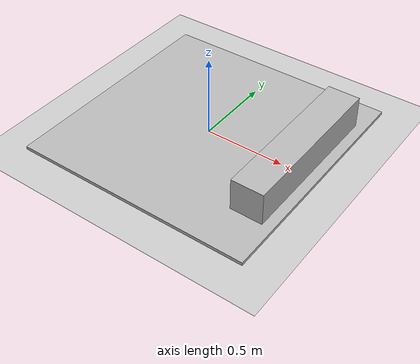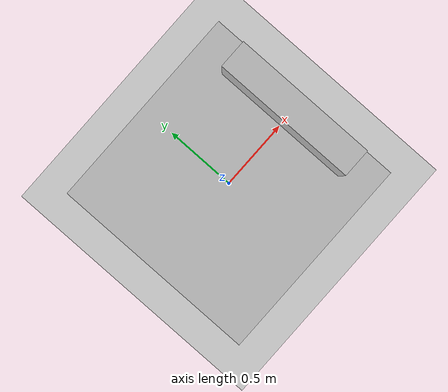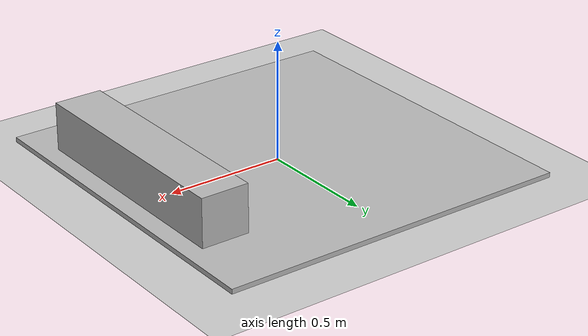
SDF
<?xml version='1.0' ?>
<sdf version='1.4'>
  <world name='grasping'>
    <!-- A global light source -->
    <include>
      <uri>model://sun</uri>
    </include>

    <!-- A ground plane -->
    <include>
      <uri>model://ground_plane</uri>
    </include>

    <model name='table'>
      <link name='link'>
        <visual name='visual1'>
          <pose>0 0 0.0 0 -0 0</pose>
          <geometry>
            <box>
              <size>0.2 1 0.2</size>
            </box>
          </geometry>
        </visual>
      </link>
      <pose>0.6 0 0.15 0 -0 0</pose>
      <static>1</static>
    </model>

    <model name='ground'>
      <link name='link'>
        <visual name='visual1'>
          <pose>0 0 0.0 0 -0 0</pose>
          <geometry>
            <box>
              <size>1.5 1.5 0.02</size>
            </box>
          </geometry>
        </visual>
      </link>
      <pose>0.0 0 0.01 0 -0 0</pose>
      <static>1</static>
    </model>

    <!-- Physics settings for simulation -->
    <physics type='ode'>
      <max_step_size>0.001</max_step_size>
      <real_time_factor>1</real_time_factor>
      <real_time_update_rate>1000</real_time_update_rate>
      <gravity>0 0 -9.81</gravity>
    </physics>
  </world>
</sdf>
